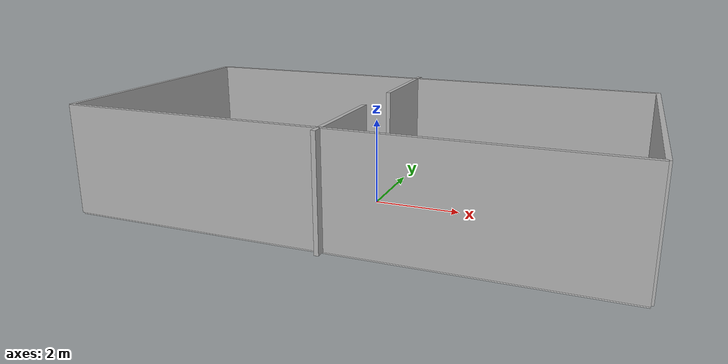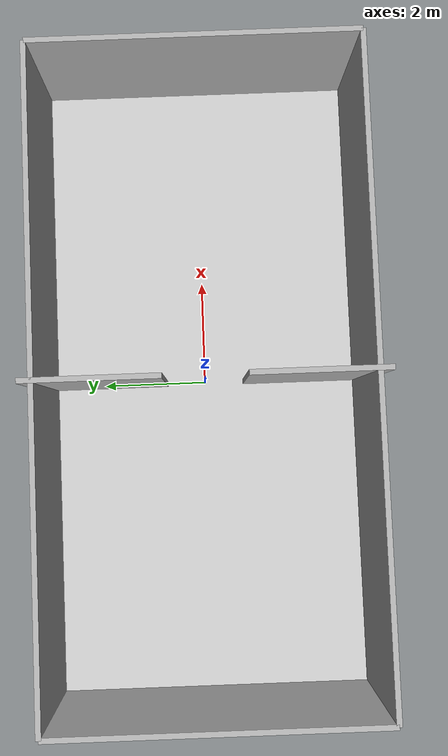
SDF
<sdf version="1.7">
 <world name="room">
  <plugin name="link_state_publisher" filename="liblink_state_publisher.so"/>
  <light name="sun" type="directional">
   <pose>0 0 10 0 -0 0</pose>
   <diffuse>0.8 0.8 0.8 1</diffuse>
   <specular>0.2 0.2 0.2 1</specular>
   <attenuation>
    <range>1000</range>
    <constant>0.9</constant>
    <linear>0.01</linear>
    <quadratic>0.001</quadratic>
   </attenuation>
   <direction>-0.5 0.1 -0.9</direction>
  </light>
  <gravity>0 0 -9.8</gravity>
  <magnetic_field>6e-06 2.3e-05 -4.2e-05</magnetic_field>
  <atmosphere type="adiabatic"/>
  <physics type="ode">
   <max_step_size>0.002</max_step_size>
   <real_time_factor>1</real_time_factor>
   <real_time_update_rate>500</real_time_update_rate>
  </physics>
  <scene><ambient>0.4 0.4 0.4 1</ambient><background>0.7 0.7 0.7 1</background><shadows>1</shadows></scene>
  <spherical_coordinates>
   <surface_model>EARTH_WGS84</surface_model>
   <latitude_deg>0</latitude_deg>
   <longitude_deg>0</longitude_deg>
   <elevation>0</elevation>
   <heading_deg>0</heading_deg>
  </spherical_coordinates>
  <model name="room">
   <static>true</static>
   <link name="floor">
    <collision name="floor_collision"><geometry><box><size>12 6 0.1</size></box></geometry></collision>
    <visual name="floor_visual">
     <geometry><box><size>12 6 0.1</size></box></geometry>
     <material><ambient>0.8 0.8 0.8 1</ambient><diffuse>0.8 0.8 0.8 1</diffuse></material>
    </visual>
   </link>
   <link name="wall_north">
    <pose>0 3 1.25 0 0 0</pose>
    <collision name="north_collision"><geometry><box><size>12 0.1 2.5</size></box></geometry></collision>
    <visual name="north_visual">
     <geometry><box><size>12 0.1 2.5</size></box></geometry>
     <material><ambient>0.7 0.7 0.7 1</ambient><diffuse>0.7 0.7 0.7 1</diffuse></material>
    </visual>
   </link>
   <link name="wall_south">
    <pose>0 -3 1.25 0 0 0</pose>
    <collision name="south_collision"><geometry><box><size>12 0.1 2.5</size></box></geometry></collision>
    <visual name="south_visual">
     <geometry><box><size>12 0.1 2.5</size></box></geometry>
     <material><ambient>0.7 0.7 0.7 1</ambient><diffuse>0.7 0.7 0.7 1</diffuse></material>
    </visual>
   </link>
   <link name="wall_east">
    <pose>6 0 1.25 0 0 0</pose>
    <collision name="east_collision"><geometry><box><size>0.1 6 2.5</size></box></geometry></collision>
    <visual name="east_visual">
     <geometry><box><size>0.1 6 2.5</size></box></geometry>
     <material><ambient>0.7 0.7 0.7 1</ambient><diffuse>0.7 0.7 0.7 1</diffuse></material>
    </visual>
   </link>
   <link name="wall_west">
    <pose>-6 0 1.25 0 0 0</pose>
    <collision name="west_collision"><geometry><box><size>0.1 6 2.5</size></box></geometry></collision>
    <visual name="west_visual">
     <geometry><box><size>0.1 6 2.5</size></box></geometry>
     <material><ambient>0.7 0.7 0.7 1</ambient><diffuse>0.7 0.7 0.7 1</diffuse></material>
    </visual>
   </link>
   <link name="wall_middle_north">
    <pose>0 2.0 1.25 0 0 0</pose>
    <collision name="middle_north_collision"><geometry><box><size>0.1 2.5 2.5</size></box></geometry></collision>
    <visual name="middle_north_visual">
     <geometry><box><size>0.1 2.5 2.5</size></box></geometry>
     <material><ambient>0.7 0.7 0.7 1</ambient><diffuse>0.7 0.7 0.7 1</diffuse></material>
    </visual>
   </link>
   <link name="wall_middle_south">
    <pose>0 -2.0 1.25 0 0 0</pose>
    <collision name="middle_south_collision"><geometry><box><size>0.1 2.5 2.5</size></box></geometry></collision>
    <visual name="middle_south_visual">
     <geometry><box><size>0.1 2.5 2.5</size></box></geometry>
     <material><ambient>0.7 0.7 0.7 1</ambient><diffuse>0.7 0.7 0.7 1</diffuse></material>
    </visual>
   </link>
  </model>
 </world>
</sdf>
